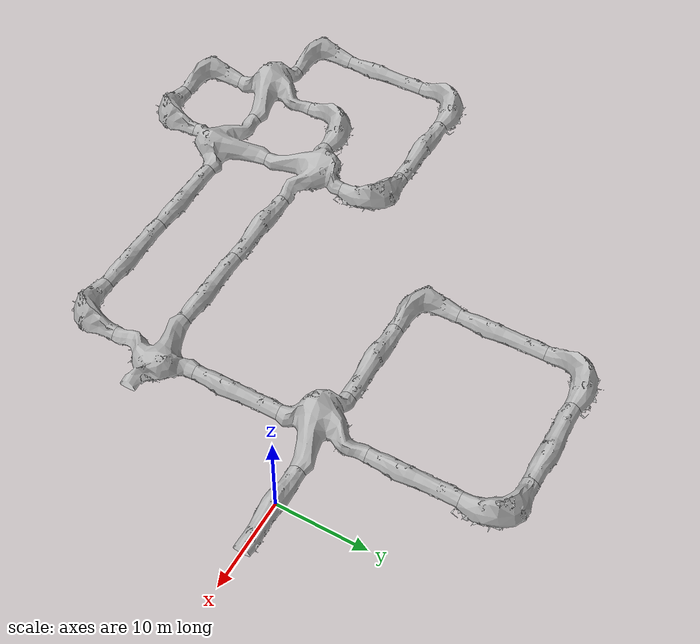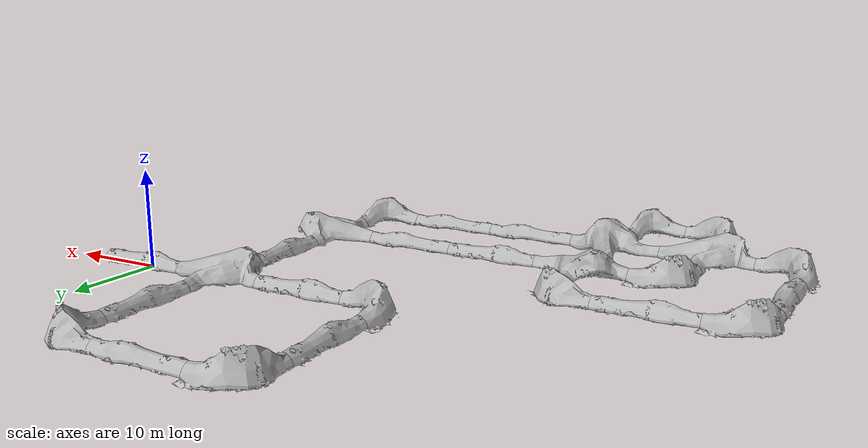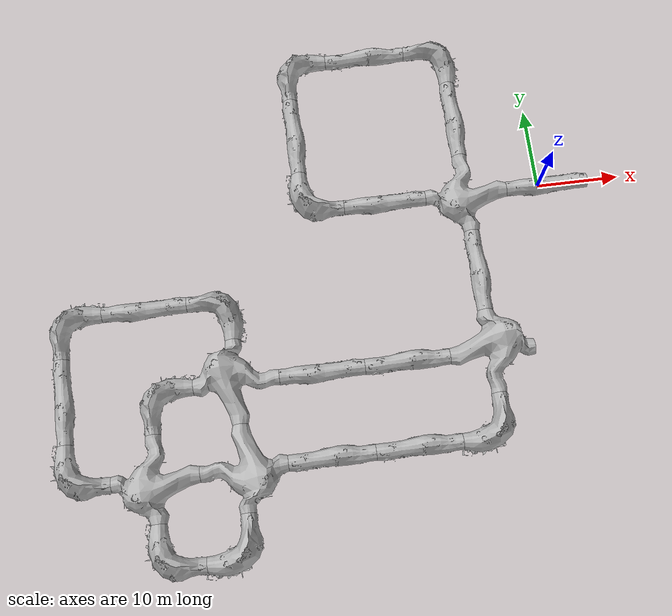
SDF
<sdf version="1.6">
 <world name="default">
  <light name="sun" type="directional">
   <pose>0 0 10 0 -0 0</pose>
   <diffuse>0.8 0.8 0.8 1</diffuse>
   <specular>0.2 0.2 0.2 1</specular>
   <attenuation>
    <range>1000</range>
    <constant>0.9</constant>
    <linear>0.01</linear>
    <quadratic>0.001</quadratic>
   </attenuation>
   <direction>-0.5 0.1 -0.9</direction>
  </light>
  <gravity>0 0 -9.8</gravity>
  <magnetic_field>6e-06 2.3e-05 -4.2e-05</magnetic_field>
  <atmosphere type="adiabatic"/>
  <physics name="default_physics" default="0" type="ode">
   <max_step_size>0.001</max_step_size>
   <real_time_factor>1</real_time_factor>
   <real_time_update_rate>1000</real_time_update_rate>
  </physics>
  <scene>
   <ambient>0.4 0.4 0.4 1</ambient>
   <background>0.7 0.7 0.7 1</background>
   <shadows>1</shadows>
   <grid>false</grid>
   <origin_visual>false</origin_visual>
  </scene>
  <spherical_coordinates>
   <surface_model>EARTH_WGS84</surface_model>
   <latitude_deg>0</latitude_deg>
   <longitude_deg>0</longitude_deg>
   <elevation>0</elevation>
   <heading_deg>0</heading_deg>
  </spherical_coordinates>
  <model name="cave_straight">
   <static>1</static>
   <link name="base">
    <collision name="base_collision">
     <geometry><mesh><uri>model://cave_straight/meshes/cave_straight_collider.dae</uri></mesh></geometry>
    </collision>
    <visual name="base_visual">
     <cast_shadows>0</cast_shadows>
     <geometry><mesh><uri>model://cave_straight/meshes/cave_straight.dae</uri></mesh></geometry>
    </visual>
   </link>
   <pose>1 0 0 0 0 -1.5708</pose>
  </model>
  <model name="cave_90deg">
   <static>1</static>
   <link name="base">
    <collision name="base_collision">
     <geometry><mesh><uri>model://cave_90deg/meshes/cave_90deg_collider.dae</uri></mesh></geometry>
    </collision>
    <visual name="base_visual">
     <cast_shadows>0</cast_shadows>
     <geometry><mesh><uri>model://cave_90deg/meshes/cave_90deg.dae</uri></mesh></geometry>
    </visual>
   </link>
   <pose>-9 20 0 0 0 -1.5708</pose>
  </model>
  <model name="cave_4way">
   <static>1</static>
   <link name="base">
    <collision name="base_collision">
     <geometry><mesh><uri>model://cave_4way/meshes/cave_4way_collider.dae</uri></mesh></geometry>
    </collision>
    <visual name="base_visual">
     <cast_shadows>0</cast_shadows>
     <geometry><mesh><uri>model://cave_4way/meshes/cave_4way.dae</uri></mesh></geometry>
    </visual>
   </link>
   <pose>-9 0 0 0 -0 0</pose>
  </model>
  <model name="cave_straight_0">
   <static>1</static>
   <link name="base">
    <collision name="base_collision">
     <geometry><mesh><uri>model://cave_straight/meshes/cave_straight_collider.dae</uri></mesh></geometry>
    </collision>
    <visual name="base_visual">
     <cast_shadows>0</cast_shadows>
     <geometry><mesh><uri>model://cave_straight/meshes/cave_straight.dae</uri></mesh></geometry>
    </visual>
   </link>
   <pose>-9 10 0 0 -0 0</pose>
  </model>
  <model name="cave_straight_1">
   <static>1</static>
   <link name="base">
    <collision name="base_collision">
     <geometry><mesh><uri>model://cave_straight/meshes/cave_straight_collider.dae</uri></mesh></geometry>
    </collision>
    <visual name="base_visual">
     <cast_shadows>0</cast_shadows>
     <geometry><mesh><uri>model://cave_straight/meshes/cave_straight.dae</uri></mesh></geometry>
    </visual>
   </link>
   <pose>-19 0 0 0 0 -1.5708</pose>
  </model>
  <model name="cave_90deg_0">
   <static>1</static>
   <link name="base">
    <collision name="base_collision">
     <geometry><mesh><uri>model://cave_90deg/meshes/cave_90deg_collider.dae</uri></mesh></geometry>
    </collision>
    <visual name="base_visual">
     <cast_shadows>0</cast_shadows>
     <geometry><mesh><uri>model://cave_90deg/meshes/cave_90deg.dae</uri></mesh></geometry>
    </visual>
   </link>
   <pose>-29 0 0 0 -0 1.5708</pose>
  </model>
  <model name="cave_straight_2">
   <static>1</static>
   <link name="base">
    <collision name="base_collision">
     <geometry><mesh><uri>model://cave_straight/meshes/cave_straight_collider.dae</uri></mesh></geometry>
    </collision>
    <visual name="base_visual">
     <cast_shadows>0</cast_shadows>
     <geometry><mesh><uri>model://cave_straight/meshes/cave_straight.dae</uri></mesh></geometry>
    </visual>
   </link>
   <pose>-29 10 0 0 -0 0</pose>
  </model>
  <model name="cave_90deg_1">
   <static>1</static>
   <link name="base">
    <collision name="base_collision">
     <geometry><mesh><uri>model://cave_90deg/meshes/cave_90deg_collider.dae</uri></mesh></geometry>
    </collision>
    <visual name="base_visual">
     <cast_shadows>0</cast_shadows>
     <geometry><mesh><uri>model://cave_90deg/meshes/cave_90deg.dae</uri></mesh></geometry>
    </visual>
   </link>
   <pose>-29 20 0 0 -0 0</pose>
  </model>
  <model name="cave_straight_3">
   <static>1</static>
   <link name="base">
    <collision name="base_collision">
     <geometry><mesh><uri>model://cave_straight/meshes/cave_straight_collider.dae</uri></mesh></geometry>
    </collision>
    <visual name="base_visual">
     <cast_shadows>0</cast_shadows>
     <geometry><mesh><uri>model://cave_straight/meshes/cave_straight.dae</uri></mesh></geometry>
    </visual>
   </link>
   <pose>-19 20 0 0 -0 1.5708</pose>
  </model>
  <model name="cave_straight_4">
   <static>1</static>
   <link name="base">
    <collision name="base_collision">
     <geometry><mesh><uri>model://cave_straight/meshes/cave_straight_collider.dae</uri></mesh></geometry>
    </collision>
    <visual name="base_visual">
     <cast_shadows>0</cast_shadows>
     <geometry><mesh><uri>model://cave_straight/meshes/cave_straight.dae</uri></mesh></geometry>
    </visual>
   </link>
   <pose>-9 -10 0 0 -0 0</pose>
  </model>
  <model name="cave_90deg_2">
   <static>1</static>
   <link name="base">
    <collision name="base_collision">
     <geometry><mesh><uri>model://cave_90deg/meshes/cave_90deg_collider.dae</uri></mesh></geometry>
    </collision>
    <visual name="base_visual">
     <cast_shadows>0</cast_shadows>
     <geometry><mesh><uri>model://cave_90deg/meshes/cave_90deg.dae</uri></mesh></geometry>
    </visual>
   </link>
   <pose>-9 -30 0 0 0 -3.14159</pose>
  </model>
  <model name="cave_straight_6">
   <static>1</static>
   <link name="base">
    <collision name="base_collision">
     <geometry><mesh><uri>model://cave_straight/meshes/cave_straight_collider.dae</uri></mesh></geometry>
    </collision>
    <visual name="base_visual">
     <cast_shadows>0</cast_shadows>
     <geometry><mesh><uri>model://cave_straight/meshes/cave_straight.dae</uri></mesh></geometry>
    </visual>
   </link>
   <pose>-19 -30 0 0 -0 1.5708</pose>
  </model>
  <model name="cave_straight_7">
   <static>1</static>
   <link name="base">
    <collision name="base_collision">
     <geometry><mesh><uri>model://cave_straight/meshes/cave_straight_collider.dae</uri></mesh></geometry>
    </collision>
    <visual name="base_visual">
     <cast_shadows>0</cast_shadows>
     <geometry><mesh><uri>model://cave_straight/meshes/cave_straight.dae</uri></mesh></geometry>
    </visual>
   </link>
   <pose>-29 -30 0 0 -0 1.5708</pose>
  </model>
  <model name="cave_4way_0">
   <static>1</static>
   <link name="base">
    <collision name="base_collision">
     <geometry><mesh><uri>model://cave_4way/meshes/cave_4way_collider.dae</uri></mesh></geometry>
    </collision>
    <visual name="base_visual">
     <cast_shadows>0</cast_shadows>
     <geometry><mesh><uri>model://cave_4way/meshes/cave_4way.dae</uri></mesh></geometry>
    </visual>
   </link>
   <pose>-39 -30 0 0 -0 1.5708</pose>
  </model>
  <model name="cave_90deg_3">
   <static>1</static>
   <link name="base">
    <collision name="base_collision">
     <geometry><mesh><uri>model://cave_90deg/meshes/cave_90deg_collider.dae</uri></mesh></geometry>
    </collision>
    <visual name="base_visual">
     <cast_shadows>0</cast_shadows>
     <geometry><mesh><uri>model://cave_90deg/meshes/cave_90deg.dae</uri></mesh></geometry>
    </visual>
   </link>
   <pose>-59 -30 0 0 -0 1.5708</pose>
  </model>
  <model name="cave_90deg_4">
   <static>1</static>
   <link name="base">
    <collision name="base_collision">
     <geometry><mesh><uri>model://cave_90deg/meshes/cave_90deg_collider.dae</uri></mesh></geometry>
    </collision>
    <visual name="base_visual">
     <cast_shadows>0</cast_shadows>
     <geometry><mesh><uri>model://cave_90deg/meshes/cave_90deg.dae</uri></mesh></geometry>
    </visual>
   </link>
   <pose>-49 -20 0 0 -0 0</pose>
  </model>
  <model name="cave_4way_1">
   <static>1</static>
   <link name="base">
    <collision name="base_collision">
     <geometry><mesh><uri>model://cave_4way/meshes/cave_4way_collider.dae</uri></mesh></geometry>
    </collision>
    <visual name="base_visual">
     <cast_shadows>0</cast_shadows>
     <geometry><mesh><uri>model://cave_4way/meshes/cave_4way.dae</uri></mesh></geometry>
    </visual>
   </link>
   <pose>-49 -30 0 0 -0 0</pose>
  </model>
  <model name="cave_90deg_5">
   <static>1</static>
   <link name="base">
    <collision name="base_collision">
     <geometry><mesh><uri>model://cave_90deg/meshes/cave_90deg_collider.dae</uri></mesh></geometry>
    </collision>
    <visual name="base_visual">
     <cast_shadows>0</cast_shadows>
     <geometry><mesh><uri>model://cave_90deg/meshes/cave_90deg.dae</uri></mesh></geometry>
    </visual>
   </link>
   <pose>-39 -40 0 0 0 -3.14159</pose>
  </model>
  <model name="cave_90deg_6">
   <static>1</static>
   <link name="base">
    <collision name="base_collision">
     <geometry><mesh><uri>model://cave_90deg/meshes/cave_90deg_collider.dae</uri></mesh></geometry>
    </collision>
    <visual name="base_visual">
     <cast_shadows>0</cast_shadows>
     <geometry><mesh><uri>model://cave_90deg/meshes/cave_90deg.dae</uri></mesh></geometry>
    </visual>
   </link>
   <pose>-49 -40 0 0 -0 1.5708</pose>
  </model>
  <model name="cave_4way_2">
   <static>1</static>
   <link name="base">
    <collision name="base_collision">
     <geometry><mesh><uri>model://cave_4way/meshes/cave_4way_collider.dae</uri></mesh></geometry>
    </collision>
    <visual name="base_visual">
     <cast_shadows>0</cast_shadows>
     <geometry><mesh><uri>model://cave_4way/meshes/cave_4way.dae</uri></mesh></geometry>
    </visual>
   </link>
   <pose>-39 -20 0 0 0 -1.5708</pose>
  </model>
  <model name="cave_straight_8">
   <static>1</static>
   <link name="base">
    <collision name="base_collision">
     <geometry><mesh><uri>model://cave_straight/meshes/cave_straight_collider.dae</uri></mesh></geometry>
    </collision>
    <visual name="base_visual">
     <cast_shadows>0</cast_shadows>
     <geometry><mesh><uri>model://cave_straight/meshes/cave_straight.dae</uri></mesh></geometry>
    </visual>
   </link>
   <pose>-59 -20 0 0 -0 0</pose>
  </model>
  <model name="cave_90deg_7">
   <static>1</static>
   <link name="base">
    <collision name="base_collision">
     <geometry><mesh><uri>model://cave_90deg/meshes/cave_90deg_collider.dae</uri></mesh></geometry>
    </collision>
    <visual name="base_visual">
     <cast_shadows>0</cast_shadows>
     <geometry><mesh><uri>model://cave_90deg/meshes/cave_90deg.dae</uri></mesh></geometry>
    </visual>
   </link>
   <pose>-59 -10 0 0 -0 0</pose>
  </model>
  <model name="cave_straight_9">
   <static>1</static>
   <link name="base">
    <collision name="base_collision">
     <geometry><mesh><uri>model://cave_straight/meshes/cave_straight_collider.dae</uri></mesh></geometry>
    </collision>
    <visual name="base_visual">
     <cast_shadows>0</cast_shadows>
     <geometry><mesh><uri>model://cave_straight/meshes/cave_straight.dae</uri></mesh></geometry>
    </visual>
   </link>
   <pose>-49 -10 0 0 0 -1.5708</pose>
  </model>
  <model name="cave_90deg_8">
   <static>1</static>
   <link name="base">
    <collision name="base_collision">
     <geometry><mesh><uri>model://cave_90deg/meshes/cave_90deg_collider.dae</uri></mesh></geometry>
    </collision>
    <visual name="base_visual">
     <cast_shadows>0</cast_shadows>
     <geometry><mesh><uri>model://cave_90deg/meshes/cave_90deg.dae</uri></mesh></geometry>
    </visual>
   </link>
   <pose>-39 -10 0 0 0 -1.5708</pose>
  </model>
  <model name="cave_straight_10">
   <static>1</static>
   <link name="base">
    <collision name="base_collision">
     <geometry><mesh><uri>model://cave_straight/meshes/cave_straight_collider.dae</uri></mesh></geometry>
    </collision>
    <visual name="base_visual">
     <cast_shadows>0</cast_shadows>
     <geometry><mesh><uri>model://cave_straight/meshes/cave_straight.dae</uri></mesh></geometry>
    </visual>
   </link>
   <pose>-29 -20 0 0 0 -1.5708</pose>
  </model>
  <model name="cave_straight_11">
   <static>1</static>
   <link name="base">
    <collision name="base_collision">
     <geometry><mesh><uri>model://cave_straight/meshes/cave_straight_collider.dae</uri></mesh></geometry>
    </collision>
    <visual name="base_visual">
     <cast_shadows>0</cast_shadows>
     <geometry><mesh><uri>model://cave_straight/meshes/cave_straight.dae</uri></mesh></geometry>
    </visual>
   </link>
   <pose>-19 -20 0 0 -0 1.5708</pose>
  </model>
  <model name="cave_4way_3">
   <static>1</static>
   <link name="base">
    <collision name="base_collision">
     <geometry><mesh><uri>model://cave_4way/meshes/cave_4way_collider.dae</uri></mesh></geometry>
    </collision>
    <visual name="base_visual">
     <cast_shadows>0</cast_shadows>
     <geometry><mesh><uri>model://cave_4way/meshes/cave_4way.dae</uri></mesh></geometry>
    </visual>
   </link>
   <pose>-9 -20 0 0 0 -3.14159</pose>
  </model>
 </world>
</sdf>
